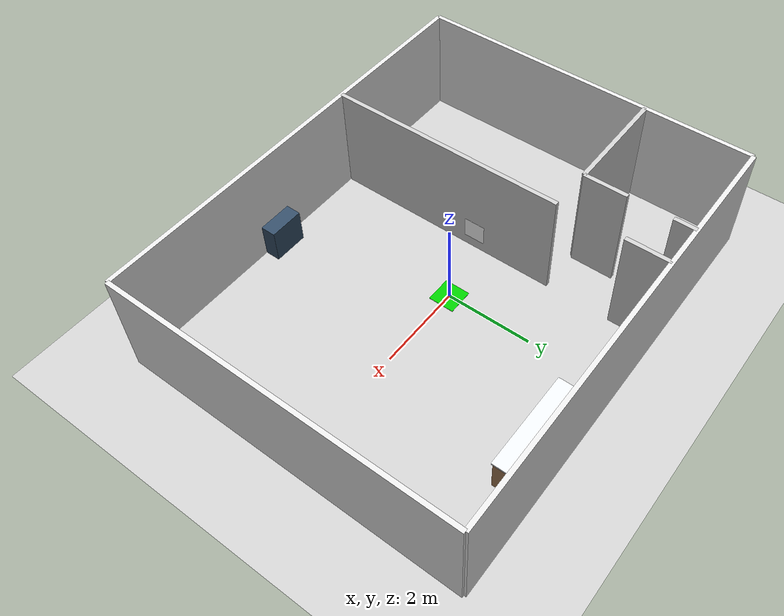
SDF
<sdf version="1.8">
 <world name="house_world">
  <physics name="1ms" type="ignored">
   <max_step_size>0.002</max_step_size>
   <real_time_factor>1.0</real_time_factor>
  </physics>
  <plugin filename="gz-sim-physics-system" name="gz::sim::systems::Physics"/>
  <plugin filename="gz-sim-user-commands-system" name="gz::sim::systems::UserCommands"/>
  <plugin filename="gz-sim-scene-broadcaster-system" name="gz::sim::systems::SceneBroadcaster"/>
  <plugin filename="gz-sim-sensors-system" name="gz::sim::systems::Sensors">
   <render_engine>ogre2</render_engine>
  </plugin>
  <plugin filename="gz-sim-imu-system" name="gz::sim::systems::Imu"/>
  <include><uri>https://fuel.gazebosim.org/1.0/openrobotics/models/Sun</uri></include>
  <include><uri>https://fuel.gazebosim.org/1.0/openrobotics/models/Ground Plane</uri></include>
  <model name="house_walls">
   <static>true</static>
   <link name="walls_link">
    <visual name="wall_north_visual">
     <pose>0 4 1.25 0 0 0</pose>
     <geometry><box><size>10 0.1 2.5</size></box></geometry>
     <material>
      <ambient>0.9 0.9 0.9 1</ambient>
      <diffuse>0.9 0.9 0.9 1</diffuse>
      <specular>0.1 0.1 0.1 1</specular>
     </material>
    </visual>
    <collision name="wall_north_collision">
     <pose>0 4 1.25 0 0 0</pose>
     <geometry><box><size>10 0.1 2.5</size></box></geometry>
    </collision>
    <visual name="wall_south_visual">
     <pose>0 -4 1.25 0 0 0</pose>
     <geometry><box><size>10 0.1 2.5</size></box></geometry>
     <material>
      <ambient>0.9 0.9 0.9 1</ambient>
      <diffuse>0.9 0.9 0.9 1</diffuse>
      <specular>0.1 0.1 0.1 1</specular>
     </material>
    </visual>
    <collision name="wall_south_collision">
     <pose>0 -4 1.25 0 0 0</pose>
     <geometry><box><size>10 0.1 2.5</size></box></geometry>
    </collision>
    <visual name="wall_east_visual">
     <pose>5 0 1.25 0 0 0</pose>
     <geometry><box><size>0.1 8 2.5</size></box></geometry>
     <material>
      <ambient>0.9 0.9 0.9 1</ambient>
      <diffuse>0.9 0.9 0.9 1</diffuse>
      <specular>0.1 0.1 0.1 1</specular>
     </material>
    </visual>
    <collision name="wall_east_collision">
     <pose>5 0 1.25 0 0 0</pose>
     <geometry><box><size>0.1 8 2.5</size></box></geometry>
    </collision>
    <visual name="wall_west_visual">
     <pose>-5 0 1.25 0 0 0</pose>
     <geometry><box><size>0.1 8 2.5</size></box></geometry>
     <material>
      <ambient>0.9 0.9 0.9 1</ambient>
      <diffuse>0.9 0.9 0.9 1</diffuse>
      <specular>0.1 0.1 0.1 1</specular>
     </material>
    </visual>
    <collision name="wall_west_collision">
     <pose>-5 0 1.25 0 0 0</pose>
     <geometry><box><size>0.1 8 2.5</size></box></geometry>
    </collision>
    <visual name="inner_wall_bedroom_visual">
     <pose>-1.5 -1.25 1.25 0 0 0</pose>
     <geometry><box><size>0.1 5.5 2.5</size></box></geometry>
     <material>
      <ambient>0.8 0.8 0.8 1</ambient>
      <diffuse>0.8 0.8 0.8 1</diffuse>
      <specular>0.1 0.1 0.1 1</specular>
     </material>
    </visual>
    <collision name="inner_wall_bedroom_collision">
     <pose>-1.5 -1.25 1.25 0 0 0</pose>
     <geometry><box><size>0.1 5.5 2.5</size></box></geometry>
    </collision>
    <visual name="inner_wall_bedroom_north_visual">
     <pose>-1.5 3.5 1.25 0 0 0</pose>
     <geometry><box><size>0.1 1 2.5</size></box></geometry>
     <material>
      <ambient>0.8 0.8 0.8 1</ambient>
      <diffuse>0.8 0.8 0.8 1</diffuse>
      <specular>0.1 0.1 0.1 1</specular>
     </material>
    </visual>
    <collision name="inner_wall_bedroom_north_collision">
     <pose>-1.5 3.5 1.25 0 0 0</pose>
     <geometry><box><size>0.1 1 2.5</size></box></geometry>
    </collision>
    <visual name="inner_wall_bathroom_h_visual">
     <pose>-3.75 1.5 1.25 0 0 0</pose>
     <geometry><box><size>2.5 0.1 2.5</size></box></geometry>
     <material>
      <ambient>0.8 0.8 0.8 1</ambient>
      <diffuse>0.8 0.8 0.8 1</diffuse>
      <specular>0.1 0.1 0.1 1</specular>
     </material>
    </visual>
    <collision name="inner_wall_bathroom_h_collision">
     <pose>-3.75 1.5 1.25 0 0 0</pose>
     <geometry><box><size>2.5 0.1 2.5</size></box></geometry>
    </collision>
    <visual name="inner_wall_bathroom_v1_visual">
     <pose>-2.5 2.0 1.25 0 0 0</pose>
     <geometry><box><size>0.1 1.0 2.5</size></box></geometry>
     <material>
      <ambient>0.8 0.8 0.8 1</ambient>
      <diffuse>0.8 0.8 0.8 1</diffuse>
      <specular>0.1 0.1 0.1 1</specular>
     </material>
    </visual>
    <collision name="inner_wall_bathroom_v1_collision">
     <pose>-2.5 2.0 1.25 0 0 0</pose>
     <geometry><box><size>0.1 1.0 2.5</size></box></geometry>
    </collision>
    <visual name="inner_wall_bathroom_v2_visual">
     <pose>-2.5 3.75 1.25 0 0 0</pose>
     <geometry><box><size>0.1 0.5 2.5</size></box></geometry>
     <material>
      <ambient>0.8 0.8 0.8 1</ambient>
      <diffuse>0.8 0.8 0.8 1</diffuse>
      <specular>0.1 0.1 0.1 1</specular>
     </material>
    </visual>
    <collision name="inner_wall_bathroom_v2_collision">
     <pose>-2.5 3.75 1.25 0 0 0</pose>
     <geometry><box><size>0.1 0.5 2.5</size></box></geometry>
    </collision>
   </link>
  </model>
  <model name="kitchen_cabinets_countertop">
   <static>true</static>
   <pose>2.0 3.55 0 0 0 0</pose>
   <link name="link">
    <collision name="counter_collision">
     <pose>0 0 0.44 0 0 0</pose>
     <geometry><box><size>2.2 0.65 0.88</size></box></geometry>
    </collision>
    <visual name="toe_kick_visual">
     <pose>0 0.05 0.05 0 0 0</pose>
     <geometry><box><size>2.18 0.55 0.10</size></box></geometry>
     <material>
      <ambient>0.15 0.15 0.15 1</ambient>
      <diffuse>0.2 0.2 0.2 1</diffuse>
      <specular>0.05 0.05 0.05 1</specular>
     </material>
    </visual>
    <visual name="cabinet_body_visual">
     <pose>0 0 0.47 0 0 0</pose>
     <geometry><box><size>2.2 0.63 0.74</size></box></geometry>
     <material>
      <ambient>0.48 0.35 0.24 1</ambient>
      <diffuse>0.62 0.46 0.32 1</diffuse>
      <specular>0.1 0.1 0.1 1</specular>
     </material>
    </visual>
    <visual name="cabinet_door_1_visual">
     <pose>-0.81 -0.32 0.47 0 0 0</pose>
     <geometry><box><size>0.51 0.02 0.70</size></box></geometry>
     <material>
      <ambient>0.54 0.40 0.28 1</ambient>
      <diffuse>0.68 0.52 0.36 1</diffuse>
      <specular>0.15 0.15 0.15 1</specular>
     </material>
    </visual>
    <visual name="cabinet_door_2_visual">
     <pose>-0.27 -0.32 0.47 0 0 0</pose>
     <geometry><box><size>0.51 0.02 0.70</size></box></geometry>
     <material>
      <ambient>0.54 0.40 0.28 1</ambient>
      <diffuse>0.68 0.52 0.36 1</diffuse>
      <specular>0.15 0.15 0.15 1</specular>
     </material>
    </visual>
    <visual name="cabinet_door_3_visual">
     <pose>0.27 -0.32 0.47 0 0 0</pose>
     <geometry><box><size>0.51 0.02 0.70</size></box></geometry>
     <material>
      <ambient>0.54 0.40 0.28 1</ambient>
      <diffuse>0.68 0.52 0.36 1</diffuse>
      <specular>0.15 0.15 0.15 1</specular>
     </material>
    </visual>
    <visual name="cabinet_door_4_visual">
     <pose>0.81 -0.32 0.47 0 0 0</pose>
     <geometry><box><size>0.51 0.02 0.70</size></box></geometry>
     <material>
      <ambient>0.54 0.40 0.28 1</ambient>
      <diffuse>0.68 0.52 0.36 1</diffuse>
      <specular>0.15 0.15 0.15 1</specular>
     </material>
    </visual>
    <visual name="handle_1_visual">
     <pose>-0.60 -0.34 0.72 0 0 0</pose>
     <geometry><box><size>0.12 0.02 0.015</size></box></geometry>
     <material>
      <ambient>0.7 0.7 0.7 1</ambient>
      <diffuse>0.85 0.85 0.85 1</diffuse>
      <specular>0.8 0.8 0.8 1</specular>
     </material>
    </visual>
    <visual name="handle_2_visual">
     <pose>-0.48 -0.34 0.72 0 0 0</pose>
     <geometry><box><size>0.12 0.02 0.015</size></box></geometry>
     <material>
      <ambient>0.7 0.7 0.7 1</ambient>
      <diffuse>0.85 0.85 0.85 1</diffuse>
      <specular>0.8 0.8 0.8 1</specular>
     </material>
    </visual>
    <visual name="handle_3_visual">
     <pose>0.48 -0.34 0.72 0 0 0</pose>
     <geometry><box><size>0.12 0.02 0.015</size></box></geometry>
     <material>
      <ambient>0.7 0.7 0.7 1</ambient>
      <diffuse>0.85 0.85 0.85 1</diffuse>
      <specular>0.8 0.8 0.8 1</specular>
     </material>
    </visual>
    <visual name="handle_4_visual">
     <pose>0.60 -0.34 0.72 0 0 0</pose>
     <geometry><box><size>0.12 0.02 0.015</size></box></geometry>
     <material>
      <ambient>0.7 0.7 0.7 1</ambient>
      <diffuse>0.85 0.85 0.85 1</diffuse>
      <specular>0.8 0.8 0.8 1</specular>
     </material>
    </visual>
    <visual name="countertop_slab_visual">
     <pose>0 -0.01 0.86 0 0 0</pose>
     <geometry><box><size>2.22 0.68 0.04</size></box></geometry>
     <material>
      <ambient>0.88 0.89 0.90 1</ambient>
      <diffuse>0.92 0.93 0.94 1</diffuse>
      <specular>0.5 0.5 0.5 1</specular>
     </material>
    </visual>
    <visual name="backsplash_visual">
     <pose>0 0.32 0.91 0 0 0</pose>
     <geometry><box><size>2.22 0.02 0.06</size></box></geometry>
     <material>
      <ambient>0.88 0.89 0.90 1</ambient>
      <diffuse>0.92 0.93 0.94 1</diffuse>
      <specular>0.5 0.5 0.5 1</specular>
     </material>
    </visual>
   </link>
  </model>
  <model name="qr_board">
   <static>true</static>
   <pose>-1.445 -0.4 0.5 0 0 0</pose>
   <link name="link">
    <visual name="qr_texture_visual">
     <geometry><box><size>0.001 0.5 0.5</size></box></geometry>
     <material>
      <diffuse>1 1 1 1</diffuse>
      <specular>0.1 0.1 0.1 1</specular>
      <pbr>
       <metal><albedo_map>model://household_robot_simulation/materials/textures/qr.png</albedo_map></metal>
      </pbr>
     </material>
    </visual>
   </link>
  </model>
  <light name="bedroom_light" type="point">
   <pose>-3.5 -2.5 2.5 0 0 0</pose>
   <diffuse>0.9 0.9 0.9 1</diffuse>
   <specular>0.1 0.1 0.1 1</specular>
   <attenuation>
    <range>8</range>
    <constant>0.5</constant>
    <linear>0.1</linear>
    <quadratic>0.01</quadratic>
   </attenuation>
  </light>
  <light name="bathroom_light" type="point">
   <pose>-3.5 2.5 2.5 0 0 0</pose>
   <diffuse>0.9 0.9 0.9 1</diffuse>
   <specular>0.1 0.1 0.1 1</specular>
   <attenuation>
    <range>8</range>
    <constant>0.5</constant>
    <linear>0.1</linear>
    <quadratic>0.01</quadratic>
   </attenuation>
  </light>
  <model name="kitchen_counter">
   <static>true</static>
   <pose>4.8 2.5 0.4 0 0 0</pose>
   <link name="link">
    <collision name="collision"><geometry><box><size>0.4 1.2 0.8</size></box></geometry></collision>
    <visual name="visual">
     <geometry><box><size>0.4 1.2 0.8</size></box></geometry>
     <material>
      <ambient>0.5 0.3 0.1 1</ambient>
      <diffuse>0.5 0.3 0.1 1</diffuse>
      <specular>0.1 0.1 0.1 1</specular>
     </material>
    </visual>
   </link>
  </model>
  <model name="medicine_cabinet">
   <static>true</static>
   <pose>1.0 -3.8 0.4 0 0 0</pose>
   <link name="link">
    <collision name="collision"><geometry><box><size>0.8 0.4 0.8</size></box></geometry></collision>
    <visual name="visual">
     <geometry><box><size>0.8 0.4 0.8</size></box></geometry>
     <material>
      <ambient>0.2 0.3 0.4 1</ambient>
      <diffuse>0.2 0.3 0.4 1</diffuse>
      <specular>0.1 0.1 0.1 1</specular>
     </material>
    </visual>
   </link>
  </model>
  <model name="charging_tile">
   <static>true</static>
   <pose>0.0 0.0 0.005 0 0 0</pose>
   <link name="link">
    <visual name="visual">
     <geometry><box><size>0.6 0.6 0.01</size></box></geometry>
     <material>
      <ambient>0.0 0.8 0.0 1</ambient>
      <diffuse>0.0 0.8 0.0 1</diffuse>
      <specular>0.1 0.1 0.1 1</specular>
     </material>
    </visual>
   </link>
  </model>
 </world>
</sdf>
